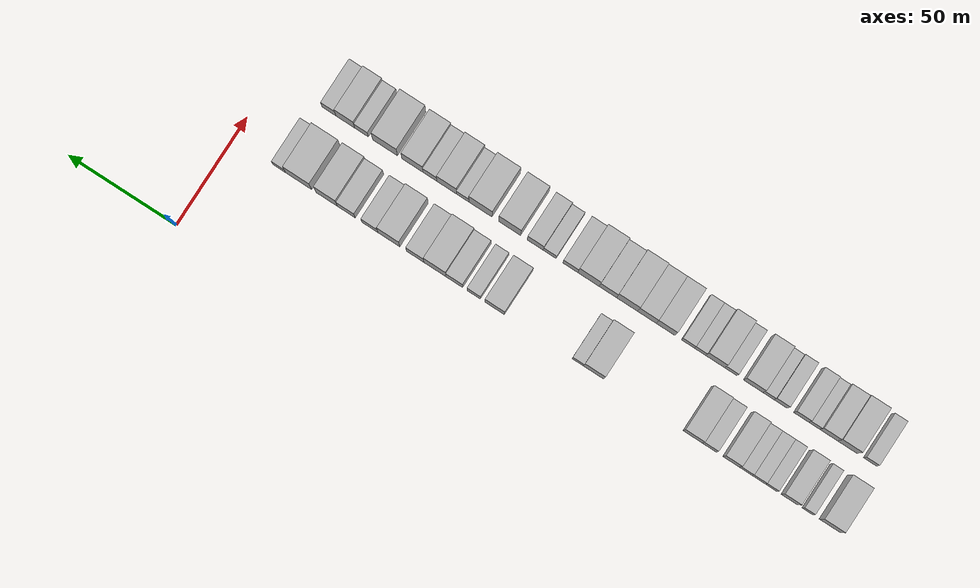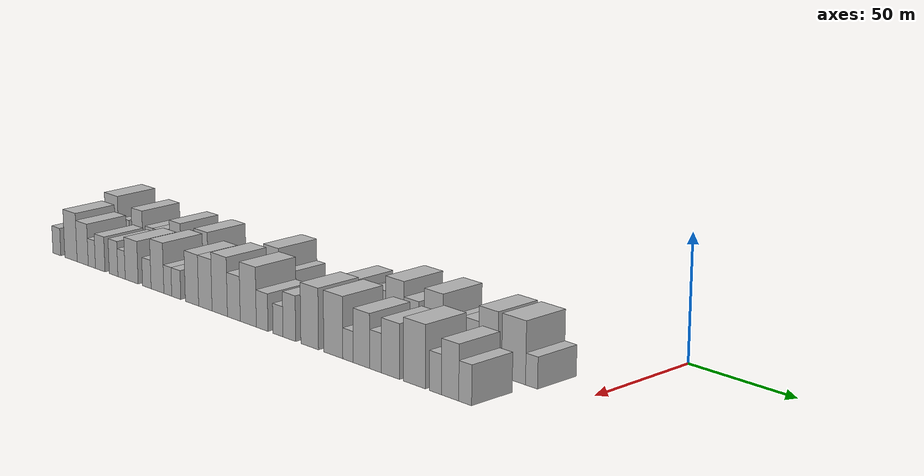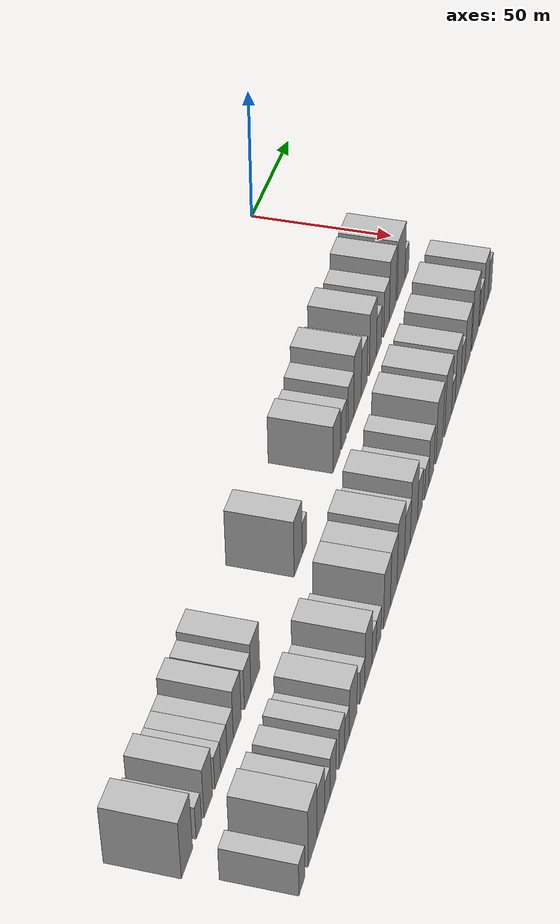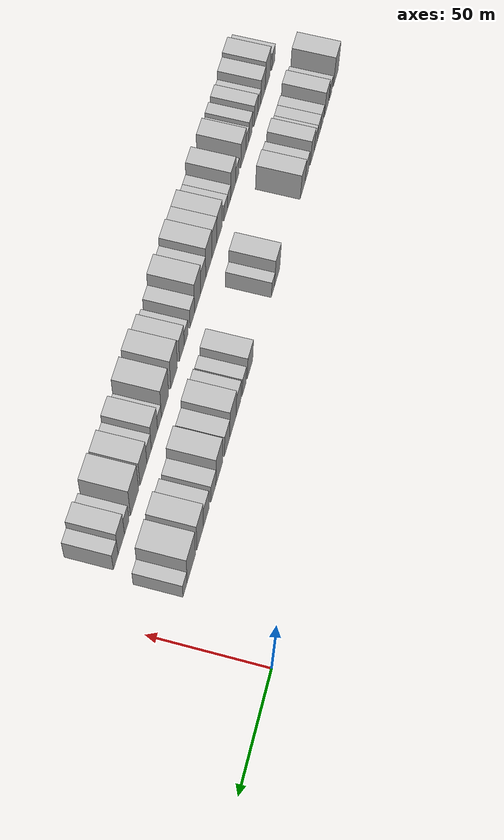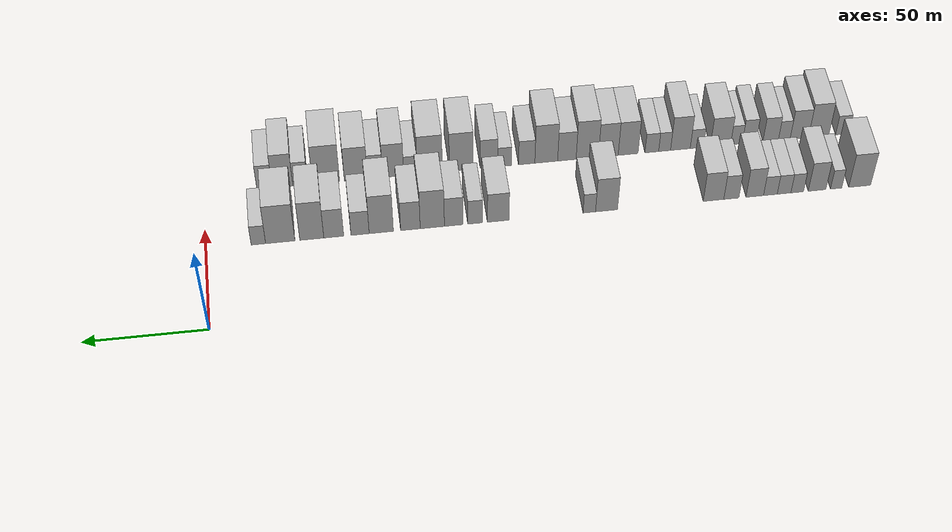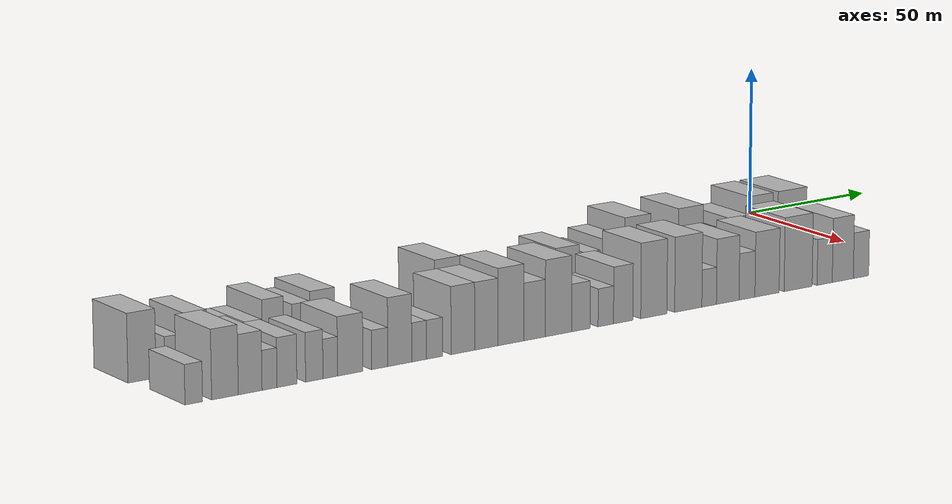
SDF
<sdf version="1.6">
 <world name="default">
  <model name="building_1">
   <static>1</static>
   <pose>50.0000 -273.2894 0 0.000000 0.000000 0.000000</pose>
   <link name="link">
    <pose>0 0 10.50 0 0 0</pose>
    <collision name="collision"><geometry><box><size>20.0000 9.4211 21.0000</size></box></geometry></collision>
    <visual name="visual">
     <cast_shadows>0</cast_shadows>
     <geometry><box><size>20.0000 9.4211 21.0000</size></box></geometry>
     <material>
      <script>
       <uri>model://HANNAS_wall/materials/scripts</uri>
       <uri>model://HANNAS_wall/materials/textures</uri>
       <name>vrc/HANNAS_wall</name>
      </script>
     </material>
    </visual>
   </link>
  </model>
  <model name="building_2">
   <static>1</static>
   <pose>50.0000 -263.1731 0 0.000000 0.000000 0.000000</pose>
   <link name="link">
    <pose>0 0 6.00 0 0 0</pose>
    <collision name="collision"><geometry><box><size>20.0000 4.8114 12.0000</size></box></geometry></collision>
    <visual name="visual">
     <cast_shadows>0</cast_shadows>
     <geometry><box><size>20.0000 4.8114 12.0000</size></box></geometry>
     <material>
      <script>
       <uri>model://HANNAS_wall/materials/scripts</uri>
       <uri>model://HANNAS_wall/materials/textures</uri>
       <name>vrc/HANNAS_wall</name>
      </script>
     </material>
    </visual>
   </link>
  </model>
  <model name="building_3">
   <static>1</static>
   <pose>50.0000 -254.9956 0 0.000000 0.000000 0.000000</pose>
   <link name="link">
    <pose>0 0 9.00 0 0 0</pose>
    <collision name="collision"><geometry><box><size>20.0000 7.5438 18.0000</size></box></geometry></collision>
    <visual name="visual">
     <cast_shadows>0</cast_shadows>
     <geometry><box><size>20.0000 7.5438 18.0000</size></box></geometry>
     <material>
      <script>
       <uri>model://HANNAS_wall/materials/scripts</uri>
       <uri>model://HANNAS_wall/materials/textures</uri>
       <name>vrc/HANNAS_wall</name>
      </script>
     </material>
    </visual>
   </link>
  </model>
  <model name="building_4">
   <static>1</static>
   <pose>50.0000 -246.5318 0 0.000000 0.000000 0.000000</pose>
   <link name="link">
    <pose>0 0 6.00 0 0 0</pose>
    <collision name="collision"><geometry><box><size>20.0000 5.3838 12.0000</size></box></geometry></collision>
    <visual name="visual">
     <cast_shadows>0</cast_shadows>
     <geometry><box><size>20.0000 5.3838 12.0000</size></box></geometry>
     <material>
      <script>
       <uri>model://HANNAS_wall/materials/scripts</uri>
       <uri>model://HANNAS_wall/materials/textures</uri>
       <name>vrc/HANNAS_wall</name>
      </script>
     </material>
    </visual>
   </link>
  </model>
  <model name="building_5">
   <static>1</static>
   <pose>50.0000 -240.9137 0 0.000000 0.000000 0.000000</pose>
   <link name="link">
    <pose>0 0 6.00 0 0 0</pose>
    <collision name="collision"><geometry><box><size>20.0000 5.8524 12.0000</size></box></geometry></collision>
    <visual name="visual">
     <cast_shadows>0</cast_shadows>
     <geometry><box><size>20.0000 5.8524 12.0000</size></box></geometry>
     <material>
      <script>
       <uri>model://HANNAS_wall/materials/scripts</uri>
       <uri>model://HANNAS_wall/materials/textures</uri>
       <name>vrc/HANNAS_wall</name>
      </script>
     </material>
    </visual>
   </link>
  </model>
  <model name="building_6">
   <static>1</static>
   <pose>50.0000 -235.0717 0 0.000000 0.000000 0.000000</pose>
   <link name="link">
    <pose>0 0 6.00 0 0 0</pose>
    <collision name="collision"><geometry><box><size>20.0000 5.8316 12.0000</size></box></geometry></collision>
    <visual name="visual">
     <cast_shadows>0</cast_shadows>
     <geometry><box><size>20.0000 5.8316 12.0000</size></box></geometry>
     <material>
      <script>
       <uri>model://HANNAS_wall/materials/scripts</uri>
       <uri>model://HANNAS_wall/materials/textures</uri>
       <name>vrc/HANNAS_wall</name>
      </script>
     </material>
    </visual>
   </link>
  </model>
  <model name="building_7">
   <static>1</static>
   <pose>50.0000 -228.4063 0 0.000000 0.000000 0.000000</pose>
   <link name="link">
    <pose>0 0 9.00 0 0 0</pose>
    <collision name="collision"><geometry><box><size>20.0000 7.4994 18.0000</size></box></geometry></collision>
    <visual name="visual">
     <cast_shadows>0</cast_shadows>
     <geometry><box><size>20.0000 7.4994 18.0000</size></box></geometry>
     <material>
      <script>
       <uri>model://HANNAS_wall/materials/scripts</uri>
       <uri>model://HANNAS_wall/materials/textures</uri>
       <name>vrc/HANNAS_wall</name>
      </script>
     </material>
    </visual>
   </link>
  </model>
  <model name="building_8">
   <static>1</static>
   <pose>50.0000 -218.4468 0 0.000000 0.000000 0.000000</pose>
   <link name="link">
    <pose>0 0 7.50 0 0 0</pose>
    <collision name="collision"><geometry><box><size>20.0000 6.4194 15.0000</size></box></geometry></collision>
    <visual name="visual">
     <cast_shadows>0</cast_shadows>
     <geometry><box><size>20.0000 6.4194 15.0000</size></box></geometry>
     <material>
      <script>
       <uri>model://HANNAS_wall/materials/scripts</uri>
       <uri>model://HANNAS_wall/materials/textures</uri>
       <name>vrc/HANNAS_wall</name>
      </script>
     </material>
    </visual>
   </link>
  </model>
  <model name="building_9">
   <static>1</static>
   <pose>50.0000 -210.8716 0 0.000000 0.000000 0.000000</pose>
   <link name="link">
    <pose>0 0 9.00 0 0 0</pose>
    <collision name="collision"><geometry><box><size>20.0000 8.7310 18.0000</size></box></geometry></collision>
    <visual name="visual">
     <cast_shadows>0</cast_shadows>
     <geometry><box><size>20.0000 8.7310 18.0000</size></box></geometry>
     <material>
      <script>
       <uri>model://HANNAS_wall/materials/scripts</uri>
       <uri>model://HANNAS_wall/materials/textures</uri>
       <name>vrc/HANNAS_wall</name>
      </script>
     </material>
    </visual>
   </link>
  </model>
  <model name="building_10">
   <static>1</static>
   <pose>50.0000 -165.6635 0 0.000000 0.000000 0.000000</pose>
   <link name="link">
    <pose>0 0 10.50 0 0 0</pose>
    <collision name="collision"><geometry><box><size>20.0000 9.2284 21.0000</size></box></geometry></collision>
    <visual name="visual">
     <cast_shadows>0</cast_shadows>
     <geometry><box><size>20.0000 9.2284 21.0000</size></box></geometry>
     <material>
      <script>
       <uri>model://HANNAS_wall/materials/scripts</uri>
       <uri>model://HANNAS_wall/materials/textures</uri>
       <name>vrc/HANNAS_wall</name>
      </script>
     </material>
    </visual>
   </link>
  </model>
  <model name="building_11">
   <static>1</static>
   <pose>50.0000 -158.4213 0 0.000000 0.000000 0.000000</pose>
   <link name="link">
    <pose>0 0 6.00 0 0 0</pose>
    <collision name="collision"><geometry><box><size>20.0000 5.2560 12.0000</size></box></geometry></collision>
    <visual name="visual">
     <cast_shadows>0</cast_shadows>
     <geometry><box><size>20.0000 5.2560 12.0000</size></box></geometry>
     <material>
      <script>
       <uri>model://HANNAS_wall/materials/scripts</uri>
       <uri>model://HANNAS_wall/materials/textures</uri>
       <name>vrc/HANNAS_wall</name>
      </script>
     </material>
    </visual>
   </link>
  </model>
  <model name="building_12">
   <static>1</static>
   <pose>50.0000 -120.2953 0 0.000000 0.000000 0.000000</pose>
   <link name="link">
    <pose>0 0 9.00 0 0 0</pose>
    <collision name="collision"><geometry><box><size>20.0000 8.9987 18.0000</size></box></geometry></collision>
    <visual name="visual">
     <cast_shadows>0</cast_shadows>
     <geometry><box><size>20.0000 8.9987 18.0000</size></box></geometry>
     <material>
      <script>
       <uri>model://HANNAS_wall/materials/scripts</uri>
       <uri>model://HANNAS_wall/materials/textures</uri>
       <name>vrc/HANNAS_wall</name>
      </script>
     </material>
    </visual>
   </link>
  </model>
  <model name="building_13">
   <static>1</static>
   <pose>50.0000 -110.7217 0 0.000000 0.000000 0.000000</pose>
   <link name="link">
    <pose>0 0 7.50 0 0 0</pose>
    <collision name="collision"><geometry><box><size>20.0000 6.1485 15.0000</size></box></geometry></collision>
    <visual name="visual">
     <cast_shadows>0</cast_shadows>
     <geometry><box><size>20.0000 6.1485 15.0000</size></box></geometry>
     <material>
      <script>
       <uri>model://HANNAS_wall/materials/scripts</uri>
       <uri>model://HANNAS_wall/materials/textures</uri>
       <name>vrc/HANNAS_wall</name>
      </script>
     </material>
    </visual>
   </link>
  </model>
  <model name="building_14">
   <static>1</static>
   <pose>50.0000 -101.7950 0 0.000000 0.000000 0.000000</pose>
   <link name="link">
    <pose>0 0 9.00 0 0 0</pose>
    <collision name="collision"><geometry><box><size>20.0000 7.7049 18.0000</size></box></geometry></collision>
    <visual name="visual">
     <cast_shadows>0</cast_shadows>
     <geometry><box><size>20.0000 7.7049 18.0000</size></box></geometry>
     <material>
      <script>
       <uri>model://HANNAS_wall/materials/scripts</uri>
       <uri>model://HANNAS_wall/materials/textures</uri>
       <name>vrc/HANNAS_wall</name>
      </script>
     </material>
    </visual>
   </link>
  </model>
  <model name="building_15">
   <static>1</static>
   <pose>50.0000 -92.9218 0 0.000000 0.000000 0.000000</pose>
   <link name="link">
    <pose>0 0 12.00 0 0 0</pose>
    <collision name="collision"><geometry><box><size>20.0000 10.0415 24.0000</size></box></geometry></collision>
    <visual name="visual">
     <cast_shadows>0</cast_shadows>
     <geometry><box><size>20.0000 10.0415 24.0000</size></box></geometry>
     <material>
      <script>
       <uri>model://HANNAS_wall/materials/scripts</uri>
       <uri>model://HANNAS_wall/materials/textures</uri>
       <name>vrc/HANNAS_wall</name>
      </script>
     </material>
    </visual>
   </link>
  </model>
  <model name="building_16">
   <static>1</static>
   <pose>50.0000 -83.8574 0 0.000000 0.000000 0.000000</pose>
   <link name="link">
    <pose>0 0 9.00 0 0 0</pose>
    <collision name="collision"><geometry><box><size>20.0000 8.0873 18.0000</size></box></geometry></collision>
    <visual name="visual">
     <cast_shadows>0</cast_shadows>
     <geometry><box><size>20.0000 8.0873 18.0000</size></box></geometry>
     <material>
      <script>
       <uri>model://HANNAS_wall/materials/scripts</uri>
       <uri>model://HANNAS_wall/materials/textures</uri>
       <name>vrc/HANNAS_wall</name>
      </script>
     </material>
    </visual>
   </link>
  </model>
  <model name="building_17">
   <static>1</static>
   <pose>50.0000 -71.8088 0 0.000000 0.000000 0.000000</pose>
   <link name="link">
    <pose>0 0 12.00 0 0 0</pose>
    <collision name="collision"><geometry><box><size>20.0000 10.0099 24.0000</size></box></geometry></collision>
    <visual name="visual">
     <cast_shadows>0</cast_shadows>
     <geometry><box><size>20.0000 10.0099 24.0000</size></box></geometry>
     <material>
      <script>
       <uri>model://HANNAS_wall/materials/scripts</uri>
       <uri>model://HANNAS_wall/materials/textures</uri>
       <name>vrc/HANNAS_wall</name>
      </script>
     </material>
    </visual>
   </link>
  </model>
  <model name="building_18">
   <static>1</static>
   <pose>50.0000 -63.0644 0 0.000000 0.000000 0.000000</pose>
   <link name="link">
    <pose>0 0 7.50 0 0 0</pose>
    <collision name="collision"><geometry><box><size>20.0000 7.4788 15.0000</size></box></geometry></collision>
    <visual name="visual">
     <cast_shadows>0</cast_shadows>
     <geometry><box><size>20.0000 7.4788 15.0000</size></box></geometry>
     <material>
      <script>
       <uri>model://HANNAS_wall/materials/scripts</uri>
       <uri>model://HANNAS_wall/materials/textures</uri>
       <name>vrc/HANNAS_wall</name>
      </script>
     </material>
    </visual>
   </link>
  </model>
  <model name="building_19">
   <static>1</static>
   <pose>50.0000 -52.2346 0 0.000000 0.000000 0.000000</pose>
   <link name="link">
    <pose>0 0 9.00 0 0 0</pose>
    <collision name="collision"><geometry><box><size>20.0000 8.1807 18.0000</size></box></geometry></collision>
    <visual name="visual">
     <cast_shadows>0</cast_shadows>
     <geometry><box><size>20.0000 8.1807 18.0000</size></box></geometry>
     <material>
      <script>
       <uri>model://HANNAS_wall/materials/scripts</uri>
       <uri>model://HANNAS_wall/materials/textures</uri>
       <name>vrc/HANNAS_wall</name>
      </script>
     </material>
    </visual>
   </link>
  </model>
  <model name="building_20">
   <static>1</static>
   <pose>50.0000 -43.2268 0 0.000000 0.000000 0.000000</pose>
   <link name="link">
    <pose>0 0 12.00 0 0 0</pose>
    <collision name="collision"><geometry><box><size>20.0000 9.8349 24.0000</size></box></geometry></collision>
    <visual name="visual">
     <cast_shadows>0</cast_shadows>
     <geometry><box><size>20.0000 9.8349 24.0000</size></box></geometry>
     <material>
      <script>
       <uri>model://HANNAS_wall/materials/scripts</uri>
       <uri>model://HANNAS_wall/materials/textures</uri>
       <name>vrc/HANNAS_wall</name>
      </script>
     </material>
    </visual>
   </link>
  </model>
  <model name="building_21">
   <static>1</static>
   <pose>50.0000 -30.3113 0 0.000000 0.000000 0.000000</pose>
   <link name="link">
    <pose>0 0 12.00 0 0 0</pose>
    <collision name="collision"><geometry><box><size>20.0000 11.9960 24.0000</size></box></geometry></collision>
    <visual name="visual">
     <cast_shadows>0</cast_shadows>
     <geometry><box><size>20.0000 11.9960 24.0000</size></box></geometry>
     <material>
      <script>
       <uri>model://HANNAS_wall/materials/scripts</uri>
       <uri>model://HANNAS_wall/materials/textures</uri>
       <name>vrc/HANNAS_wall</name>
      </script>
     </material>
    </visual>
   </link>
  </model>
  <model name="building_22">
   <static>1</static>
   <pose>50.0000 -21.3489 0 0.000000 0.000000 0.000000</pose>
   <link name="link">
    <pose>0 0 6.00 0 0 0</pose>
    <collision name="collision"><geometry><box><size>20.0000 5.9289 12.0000</size></box></geometry></collision>
    <visual name="visual">
     <cast_shadows>0</cast_shadows>
     <geometry><box><size>20.0000 5.9289 12.0000</size></box></geometry>
     <material>
      <script>
       <uri>model://HANNAS_wall/materials/scripts</uri>
       <uri>model://HANNAS_wall/materials/textures</uri>
       <name>vrc/HANNAS_wall</name>
      </script>
     </material>
    </visual>
   </link>
  </model>
  <model name="building_47">
   <static>1</static>
   <pose>79.0000 -273.0816 0 0.000000 0.000000 0.000000</pose>
   <link name="link">
    <pose>0 0 6.00 0 0 0</pose>
    <collision name="collision"><geometry><box><size>20.0000 5.8367 12.0000</size></box></geometry></collision>
    <visual name="visual">
     <cast_shadows>0</cast_shadows>
     <geometry><box><size>20.0000 5.8367 12.0000</size></box></geometry>
     <material>
      <script>
       <uri>model://HANNAS_wall/materials/scripts</uri>
       <uri>model://HANNAS_wall/materials/textures</uri>
       <name>vrc/HANNAS_wall</name>
      </script>
     </material>
    </visual>
   </link>
  </model>
  <model name="building_48">
   <static>1</static>
   <pose>79.0000 -262.6947 0 0.000000 0.000000 0.000000</pose>
   <link name="link">
    <pose>0 0 10.50 0 0 0</pose>
    <collision name="collision"><geometry><box><size>20.0000 8.9372 21.0000</size></box></geometry></collision>
    <visual name="visual">
     <cast_shadows>0</cast_shadows>
     <geometry><box><size>20.0000 8.9372 21.0000</size></box></geometry>
     <material>
      <script>
       <uri>model://HANNAS_wall/materials/scripts</uri>
       <uri>model://HANNAS_wall/materials/textures</uri>
       <name>vrc/HANNAS_wall</name>
      </script>
     </material>
    </visual>
   </link>
  </model>
  <model name="building_49">
   <static>1</static>
   <pose>79.0000 -254.2086 0 0.000000 0.000000 0.000000</pose>
   <link name="link">
    <pose>0 0 9.00 0 0 0</pose>
    <collision name="collision"><geometry><box><size>20.0000 8.0350 18.0000</size></box></geometry></collision>
    <visual name="visual">
     <cast_shadows>0</cast_shadows>
     <geometry><box><size>20.0000 8.0350 18.0000</size></box></geometry>
     <material>
      <script>
       <uri>model://HANNAS_wall/materials/scripts</uri>
       <uri>model://HANNAS_wall/materials/textures</uri>
       <name>vrc/HANNAS_wall</name>
      </script>
     </material>
    </visual>
   </link>
  </model>
  <model name="building_50">
   <static>1</static>
   <pose>79.0000 -247.6454 0 0.000000 0.000000 0.000000</pose>
   <link name="link">
    <pose>0 0 6.00 0 0 0</pose>
    <collision name="collision"><geometry><box><size>20.0000 5.0915 12.0000</size></box></geometry></collision>
    <visual name="visual">
     <cast_shadows>0</cast_shadows>
     <geometry><box><size>20.0000 5.0915 12.0000</size></box></geometry>
     <material>
      <script>
       <uri>model://HANNAS_wall/materials/scripts</uri>
       <uri>model://HANNAS_wall/materials/textures</uri>
       <name>vrc/HANNAS_wall</name>
      </script>
     </material>
    </visual>
   </link>
  </model>
  <model name="building_51">
   <static>1</static>
   <pose>79.0000 -241.7153 0 0.000000 0.000000 0.000000</pose>
   <link name="link">
    <pose>0 0 7.50 0 0 0</pose>
    <collision name="collision"><geometry><box><size>20.0000 6.7688 15.0000</size></box></geometry></collision>
    <visual name="visual">
     <cast_shadows>0</cast_shadows>
     <geometry><box><size>20.0000 6.7688 15.0000</size></box></geometry>
     <material>
      <script>
       <uri>model://HANNAS_wall/materials/scripts</uri>
       <uri>model://HANNAS_wall/materials/textures</uri>
       <name>vrc/HANNAS_wall</name>
      </script>
     </material>
    </visual>
   </link>
  </model>
  <model name="building_52">
   <static>1</static>
   <pose>79.0000 -232.3293 0 0.000000 0.000000 0.000000</pose>
   <link name="link">
    <pose>0 0 7.50 0 0 0</pose>
    <collision name="collision"><geometry><box><size>20.0000 6.0031 15.0000</size></box></geometry></collision>
    <visual name="visual">
     <cast_shadows>0</cast_shadows>
     <geometry><box><size>20.0000 6.0031 15.0000</size></box></geometry>
     <material>
      <script>
       <uri>model://HANNAS_wall/materials/scripts</uri>
       <uri>model://HANNAS_wall/materials/textures</uri>
       <name>vrc/HANNAS_wall</name>
      </script>
     </material>
    </visual>
   </link>
  </model>
  <model name="building_53">
   <static>1</static>
   <pose>79.0000 -226.7946 0 0.000000 0.000000 0.000000</pose>
   <link name="link">
    <pose>0 0 6.00 0 0 0</pose>
    <collision name="collision"><geometry><box><size>20.0000 5.0664 12.0000</size></box></geometry></collision>
    <visual name="visual">
     <cast_shadows>0</cast_shadows>
     <geometry><box><size>20.0000 5.0664 12.0000</size></box></geometry>
     <material>
      <script>
       <uri>model://HANNAS_wall/materials/scripts</uri>
       <uri>model://HANNAS_wall/materials/textures</uri>
       <name>vrc/HANNAS_wall</name>
      </script>
     </material>
    </visual>
   </link>
  </model>
  <model name="building_54">
   <static>1</static>
   <pose>79.0000 -219.8403 0 0.000000 0.000000 0.000000</pose>
   <link name="link">
    <pose>0 0 9.00 0 0 0</pose>
    <collision name="collision"><geometry><box><size>20.0000 8.8422 18.0000</size></box></geometry></collision>
    <visual name="visual">
     <cast_shadows>0</cast_shadows>
     <geometry><box><size>20.0000 8.8422 18.0000</size></box></geometry>
     <material>
      <script>
       <uri>model://HANNAS_wall/materials/scripts</uri>
       <uri>model://HANNAS_wall/materials/textures</uri>
       <name>vrc/HANNAS_wall</name>
      </script>
     </material>
    </visual>
   </link>
  </model>
  <model name="building_55">
   <static>1</static>
   <pose>79.0000 -209.5473 0 0.000000 0.000000 0.000000</pose>
   <link name="link">
    <pose>0 0 6.00 0 0 0</pose>
    <collision name="collision"><geometry><box><size>20.0000 5.7439 12.0000</size></box></geometry></collision>
    <visual name="visual">
     <cast_shadows>0</cast_shadows>
     <geometry><box><size>20.0000 5.7439 12.0000</size></box></geometry>
     <material>
      <script>
       <uri>model://HANNAS_wall/materials/scripts</uri>
       <uri>model://HANNAS_wall/materials/textures</uri>
       <name>vrc/HANNAS_wall</name>
      </script>
     </material>
    </visual>
   </link>
  </model>
  <model name="building_56">
   <static>1</static>
   <pose>79.0000 -202.4162 0 0.000000 0.000000 0.000000</pose>
   <link name="link">
    <pose>0 0 10.50 0 0 0</pose>
    <collision name="collision"><geometry><box><size>20.0000 8.5183 21.0000</size></box></geometry></collision>
    <visual name="visual">
     <cast_shadows>0</cast_shadows>
     <geometry><box><size>20.0000 8.5183 21.0000</size></box></geometry>
     <material>
      <script>
       <uri>model://HANNAS_wall/materials/scripts</uri>
       <uri>model://HANNAS_wall/materials/textures</uri>
       <name>vrc/HANNAS_wall</name>
      </script>
     </material>
    </visual>
   </link>
  </model>
  <model name="building_57">
   <static>1</static>
   <pose>79.0000 -195.5853 0 0.000000 0.000000 0.000000</pose>
   <link name="link">
    <pose>0 0 6.00 0 0 0</pose>
    <collision name="collision"><geometry><box><size>20.0000 5.1434 12.0000</size></box></geometry></collision>
    <visual name="visual">
     <cast_shadows>0</cast_shadows>
     <geometry><box><size>20.0000 5.1434 12.0000</size></box></geometry>
     <material>
      <script>
       <uri>model://HANNAS_wall/materials/scripts</uri>
       <uri>model://HANNAS_wall/materials/textures</uri>
       <name>vrc/HANNAS_wall</name>
      </script>
     </material>
    </visual>
   </link>
  </model>
  <model name="building_58">
   <static>1</static>
   <pose>79.0000 -190.0571 0 0.000000 0.000000 0.000000</pose>
   <link name="link">
    <pose>0 0 6.00 0 0 0</pose>
    <collision name="collision"><geometry><box><size>20.0000 5.9130 12.0000</size></box></geometry></collision>
    <visual name="visual">
     <cast_shadows>0</cast_shadows>
     <geometry><box><size>20.0000 5.9130 12.0000</size></box></geometry>
     <material>
      <script>
       <uri>model://HANNAS_wall/materials/scripts</uri>
       <uri>model://HANNAS_wall/materials/textures</uri>
       <name>vrc/HANNAS_wall</name>
      </script>
     </material>
    </visual>
   </link>
  </model>
  <model name="building_59">
   <static>1</static>
   <pose>79.0000 -179.8180 0 0.000000 0.000000 0.000000</pose>
   <link name="link">
    <pose>0 0 10.50 0 0 0</pose>
    <collision name="collision"><geometry><box><size>20.0000 8.5653 21.0000</size></box></geometry></collision>
    <visual name="visual">
     <cast_shadows>0</cast_shadows>
     <geometry><box><size>20.0000 8.5653 21.0000</size></box></geometry>
     <material>
      <script>
       <uri>model://HANNAS_wall/materials/scripts</uri>
       <uri>model://HANNAS_wall/materials/textures</uri>
       <name>vrc/HANNAS_wall</name>
      </script>
     </material>
    </visual>
   </link>
  </model>
  <model name="building_60">
   <static>1</static>
   <pose>79.0000 -171.2874 0 0.000000 0.000000 0.000000</pose>
   <link name="link">
    <pose>0 0 10.50 0 0 0</pose>
    <collision name="collision"><geometry><box><size>20.0000 8.4959 21.0000</size></box></geometry></collision>
    <visual name="visual">
     <cast_shadows>0</cast_shadows>
     <geometry><box><size>20.0000 8.4959 21.0000</size></box></geometry>
     <material>
      <script>
       <uri>model://HANNAS_wall/materials/scripts</uri>
       <uri>model://HANNAS_wall/materials/textures</uri>
       <name>vrc/HANNAS_wall</name>
      </script>
     </material>
    </visual>
   </link>
  </model>
  <model name="building_61">
   <static>1</static>
   <pose>79.0000 -162.2312 0 0.000000 0.000000 0.000000</pose>
   <link name="link">
    <pose>0 0 12.00 0 0 0</pose>
    <collision name="collision"><geometry><box><size>20.0000 9.6166 24.0000</size></box></geometry></collision>
    <visual name="visual">
     <cast_shadows>0</cast_shadows>
     <geometry><box><size>20.0000 9.6166 24.0000</size></box></geometry>
     <material>
      <script>
       <uri>model://HANNAS_wall/materials/scripts</uri>
       <uri>model://HANNAS_wall/materials/textures</uri>
       <name>vrc/HANNAS_wall</name>
      </script>
     </material>
    </visual>
   </link>
  </model>
  <model name="building_62">
   <static>1</static>
   <pose>79.0000 -153.4597 0 0.000000 0.000000 0.000000</pose>
   <link name="link">
    <pose>0 0 9.00 0 0 0</pose>
    <collision name="collision"><geometry><box><size>20.0000 7.9263 18.0000</size></box></geometry></collision>
    <visual name="visual">
     <cast_shadows>0</cast_shadows>
     <geometry><box><size>20.0000 7.9263 18.0000</size></box></geometry>
     <material>
      <script>
       <uri>model://HANNAS_wall/materials/scripts</uri>
       <uri>model://HANNAS_wall/materials/textures</uri>
       <name>vrc/HANNAS_wall</name>
      </script>
     </material>
    </visual>
   </link>
  </model>
  <model name="building_63">
   <static>1</static>
   <pose>79.0000 -144.6054 0 0.000000 0.000000 0.000000</pose>
   <link name="link">
    <pose>0 0 12.00 0 0 0</pose>
    <collision name="collision"><geometry><box><size>20.0000 9.7823 24.0000</size></box></geometry></collision>
    <visual name="visual">
     <cast_shadows>0</cast_shadows>
     <geometry><box><size>20.0000 9.7823 24.0000</size></box></geometry>
     <material>
      <script>
       <uri>model://HANNAS_wall/materials/scripts</uri>
       <uri>model://HANNAS_wall/materials/textures</uri>
       <name>vrc/HANNAS_wall</name>
      </script>
     </material>
    </visual>
   </link>
  </model>
  <model name="building_64">
   <static>1</static>
   <pose>79.0000 -136.2184 0 0.000000 0.000000 0.000000</pose>
   <link name="link">
    <pose>0 0 7.50 0 0 0</pose>
    <collision name="collision"><geometry><box><size>20.0000 6.9917 15.0000</size></box></geometry></collision>
    <visual name="visual">
     <cast_shadows>0</cast_shadows>
     <geometry><box><size>20.0000 6.9917 15.0000</size></box></geometry>
     <material>
      <script>
       <uri>model://HANNAS_wall/materials/scripts</uri>
       <uri>model://HANNAS_wall/materials/textures</uri>
       <name>vrc/HANNAS_wall</name>
      </script>
     </material>
    </visual>
   </link>
  </model>
  <model name="building_65">
   <static>1</static>
   <pose>79.0000 -126.7754 0 0.000000 0.000000 0.000000</pose>
   <link name="link">
    <pose>0 0 6.00 0 0 0</pose>
    <collision name="collision"><geometry><box><size>20.0000 5.8942 12.0000</size></box></geometry></collision>
    <visual name="visual">
     <cast_shadows>0</cast_shadows>
     <geometry><box><size>20.0000 5.8942 12.0000</size></box></geometry>
     <material>
      <script>
       <uri>model://HANNAS_wall/materials/scripts</uri>
       <uri>model://HANNAS_wall/materials/textures</uri>
       <name>vrc/HANNAS_wall</name>
      </script>
     </material>
    </visual>
   </link>
  </model>
  <model name="building_66">
   <static>1</static>
   <pose>79.0000 -120.1192 0 0.000000 0.000000 0.000000</pose>
   <link name="link">
    <pose>0 0 9.00 0 0 0</pose>
    <collision name="collision"><geometry><box><size>20.0000 7.4182 18.0000</size></box></geometry></collision>
    <visual name="visual">
     <cast_shadows>0</cast_shadows>
     <geometry><box><size>20.0000 7.4182 18.0000</size></box></geometry>
     <material>
      <script>
       <uri>model://HANNAS_wall/materials/scripts</uri>
       <uri>model://HANNAS_wall/materials/textures</uri>
       <name>vrc/HANNAS_wall</name>
      </script>
     </material>
    </visual>
   </link>
  </model>
  <model name="building_67">
   <static>1</static>
   <pose>79.0000 -108.3491 0 0.000000 0.000000 0.000000</pose>
   <link name="link">
    <pose>0 0 12.00 0 0 0</pose>
    <collision name="collision"><geometry><box><size>20.0000 10.1220 24.0000</size></box></geometry></collision>
    <visual name="visual">
     <cast_shadows>0</cast_shadows>
     <geometry><box><size>20.0000 10.1220 24.0000</size></box></geometry>
     <material>
      <script>
       <uri>model://HANNAS_wall/materials/scripts</uri>
       <uri>model://HANNAS_wall/materials/textures</uri>
       <name>vrc/HANNAS_wall</name>
      </script>
     </material>
    </visual>
   </link>
  </model>
  <model name="building_68">
   <static>1</static>
   <pose>79.0000 -94.9491 0 0.000000 0.000000 0.000000</pose>
   <link name="link">
    <pose>0 0 12.00 0 0 0</pose>
    <collision name="collision"><geometry><box><size>20.0000 10.6780 24.0000</size></box></geometry></collision>
    <visual name="visual">
     <cast_shadows>0</cast_shadows>
     <geometry><box><size>20.0000 10.6780 24.0000</size></box></geometry>
     <material>
      <script>
       <uri>model://HANNAS_wall/materials/scripts</uri>
       <uri>model://HANNAS_wall/materials/textures</uri>
       <name>vrc/HANNAS_wall</name>
      </script>
     </material>
    </visual>
   </link>
  </model>
  <model name="building_69">
   <static>1</static>
   <pose>79.0000 -86.7513 0 0.000000 0.000000 0.000000</pose>
   <link name="link">
    <pose>0 0 6.00 0 0 0</pose>
    <collision name="collision"><geometry><box><size>20.0000 5.7175 12.0000</size></box></geometry></collision>
    <visual name="visual">
     <cast_shadows>0</cast_shadows>
     <geometry><box><size>20.0000 5.7175 12.0000</size></box></geometry>
     <material>
      <script>
       <uri>model://HANNAS_wall/materials/scripts</uri>
       <uri>model://HANNAS_wall/materials/textures</uri>
       <name>vrc/HANNAS_wall</name>
      </script>
     </material>
    </visual>
   </link>
  </model>
  <model name="building_70">
   <static>1</static>
   <pose>79.0000 -79.4075 0 0.000000 0.000000 0.000000</pose>
   <link name="link">
    <pose>0 0 10.50 0 0 0</pose>
    <collision name="collision"><geometry><box><size>20.0000 8.9700 21.0000</size></box></geometry></collision>
    <visual name="visual">
     <cast_shadows>0</cast_shadows>
     <geometry><box><size>20.0000 8.9700 21.0000</size></box></geometry>
     <material>
      <script>
       <uri>model://HANNAS_wall/materials/scripts</uri>
       <uri>model://HANNAS_wall/materials/textures</uri>
       <name>vrc/HANNAS_wall</name>
      </script>
     </material>
    </visual>
   </link>
  </model>
  <model name="building_71">
   <static>1</static>
   <pose>79.0000 -71.7348 0 0.000000 0.000000 0.000000</pose>
   <link name="link">
    <pose>0 0 7.50 0 0 0</pose>
    <collision name="collision"><geometry><box><size>20.0000 6.3754 15.0000</size></box></geometry></collision>
    <visual name="visual">
     <cast_shadows>0</cast_shadows>
     <geometry><box><size>20.0000 6.3754 15.0000</size></box></geometry>
     <material>
      <script>
       <uri>model://HANNAS_wall/materials/scripts</uri>
       <uri>model://HANNAS_wall/materials/textures</uri>
       <name>vrc/HANNAS_wall</name>
      </script>
     </material>
    </visual>
   </link>
  </model>
  <model name="building_72">
   <static>1</static>
   <pose>79.0000 -63.6877 0 0.000000 0.000000 0.000000</pose>
   <link name="link">
    <pose>0 0 10.50 0 0 0</pose>
    <collision name="collision"><geometry><box><size>20.0000 9.7186 21.0000</size></box></geometry></collision>
    <visual name="visual">
     <cast_shadows>0</cast_shadows>
     <geometry><box><size>20.0000 9.7186 21.0000</size></box></geometry>
     <material>
      <script>
       <uri>model://HANNAS_wall/materials/scripts</uri>
       <uri>model://HANNAS_wall/materials/textures</uri>
       <name>vrc/HANNAS_wall</name>
      </script>
     </material>
    </visual>
   </link>
  </model>
  <model name="building_73">
   <static>1</static>
   <pose>79.0000 -51.1180 0 0.000000 0.000000 0.000000</pose>
   <link name="link">
    <pose>0 0 12.00 0 0 0</pose>
    <collision name="collision"><geometry><box><size>20.0000 11.4209 24.0000</size></box></geometry></collision>
    <visual name="visual">
     <cast_shadows>0</cast_shadows>
     <geometry><box><size>20.0000 11.4209 24.0000</size></box></geometry>
     <material>
      <script>
       <uri>model://HANNAS_wall/materials/scripts</uri>
       <uri>model://HANNAS_wall/materials/textures</uri>
       <name>vrc/HANNAS_wall</name>
      </script>
     </material>
    </visual>
   </link>
  </model>
  <model name="building_74">
   <static>1</static>
   <pose>79.0000 -40.2921 0 0.000000 0.000000 0.000000</pose>
   <link name="link">
    <pose>0 0 7.50 0 0 0</pose>
    <collision name="collision"><geometry><box><size>20.0000 6.2309 15.0000</size></box></geometry></collision>
    <visual name="visual">
     <cast_shadows>0</cast_shadows>
     <geometry><box><size>20.0000 6.2309 15.0000</size></box></geometry>
     <material>
      <script>
       <uri>model://HANNAS_wall/materials/scripts</uri>
       <uri>model://HANNAS_wall/materials/textures</uri>
       <name>vrc/HANNAS_wall</name>
      </script>
     </material>
    </visual>
   </link>
  </model>
  <model name="building_75">
   <static>1</static>
   <pose>79.0000 -32.8209 0 0.000000 0.000000 0.000000</pose>
   <link name="link">
    <pose>0 0 10.50 0 0 0</pose>
    <collision name="collision"><geometry><box><size>20.0000 8.7115 21.0000</size></box></geometry></collision>
    <visual name="visual">
     <cast_shadows>0</cast_shadows>
     <geometry><box><size>20.0000 8.7115 21.0000</size></box></geometry>
     <material>
      <script>
       <uri>model://HANNAS_wall/materials/scripts</uri>
       <uri>model://HANNAS_wall/materials/textures</uri>
       <name>vrc/HANNAS_wall</name>
      </script>
     </material>
    </visual>
   </link>
  </model>
  <model name="building_76">
   <static>1</static>
   <pose>79.0000 -25.2636 0 0.000000 0.000000 0.000000</pose>
   <link name="link">
    <pose>0 0 7.50 0 0 0</pose>
    <collision name="collision"><geometry><box><size>20.0000 6.4030 15.0000</size></box></geometry></collision>
    <visual name="visual">
     <cast_shadows>0</cast_shadows>
     <geometry><box><size>20.0000 6.4030 15.0000</size></box></geometry>
     <material>
      <script>
       <uri>model://HANNAS_wall/materials/scripts</uri>
       <uri>model://HANNAS_wall/materials/textures</uri>
       <name>vrc/HANNAS_wall</name>
      </script>
     </material>
    </visual>
   </link>
  </model>
 </world>
</sdf>
